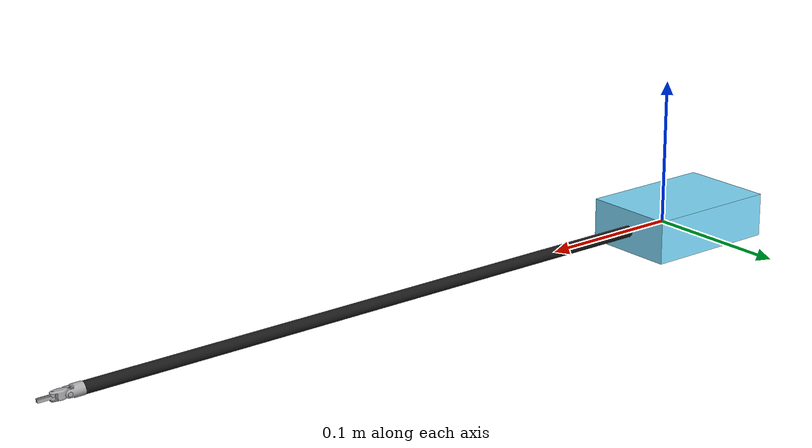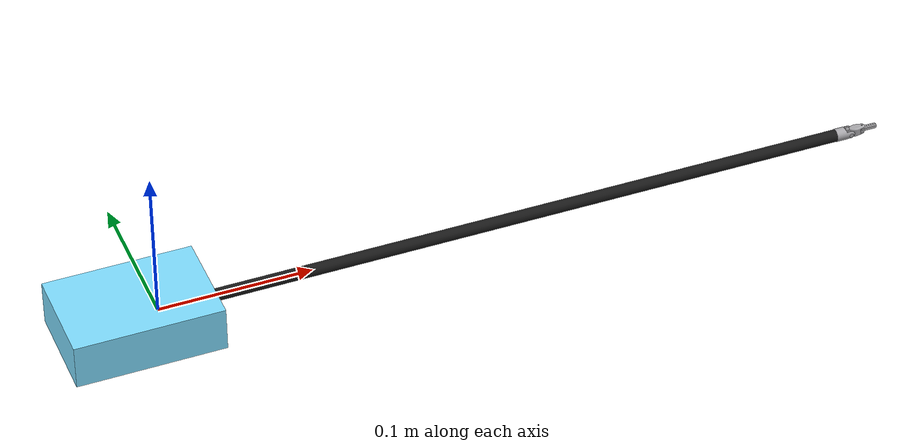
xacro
<?xml version="1.0"?>
<robot name="lnd_test" xmlns:xacro="http://ros.org/wiki/xacro">
  <link name="world" />

  <xacro:include filename="lnd.urdf.xacro" />
  <xacro:lnd420006 prefix="lnd_" />

  <joint name="lnd_world" type="fixed">
    <parent link="world"/>
    <child link="lnd_base"/>
    <origin xyz="0 0 0"/>
  </joint>

</robot>

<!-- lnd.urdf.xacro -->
<!-- da Vinci Large Needle Driver (LND) model 420006 (S/Si) and 470006 (X/Xi) -->
<robot name="lnd" xmlns:xacro="http://ros.org/wiki/xacro">

  <material name="tip_metallic_gray">
    <color rgba="0.667 0.663 0.678 1.0" />
  </material>

  <xacro:macro name="lnd_tip" params="prefix">
    <link name="${prefix}roll">
      <visual>
        <origin xyz="0 0 -0.01" rpy="0 0 ${pi/2}" />
        <geometry>
          <mesh filename="package://ursurg_description/meshes/lnd_tip/roll.stl" />
        </geometry>
        <material name="tip_metallic_gray" />
      </visual>
    </link>
    <link name="${prefix}wrist">
      <visual>
        <origin xyz="0 0 0" rpy="0 0 ${pi/2}" />
        <geometry>
          <mesh filename="package://ursurg_description/meshes/lnd_tip/wrist.stl" />
        </geometry>
        <material name="tip_metallic_gray" />
      </visual>
    </link>
    <link name="${prefix}jaw0" />
    <link name="${prefix}jaw1">
      <visual>
        <origin xyz="0 0 0" rpy="0 ${pi/2} 0" />
        <geometry>
          <mesh filename="package://ursurg_description/meshes/lnd_tip/jaw.stl" />
        </geometry>
        <material name="tip_metallic_gray" />
      </visual>
    </link>
    <link name="${prefix}jaw2">
      <visual>
        <origin xyz="0 0 0" rpy="0 ${pi/2} 0" />
        <geometry>
          <mesh filename="package://ursurg_description/meshes/lnd_tip/jaw.stl" />
        </geometry>
        <material name="tip_metallic_gray" />
      </visual>
    </link>
    <link name="${prefix}tcp1" />
    <link name="${prefix}tcp2" />

    <joint name="${prefix}roll_joint" type="revolute">
      <parent link="${prefix}base" />
      <child link="${prefix}roll" />
      <origin xyz="0.467 0 0" rpy="${-pi} ${-pi/2} 0" />
      <axis xyz="0 0 1" />
      <limit lower="${radians(-260)}" upper="${radians(260)}" effort="5" velocity="${pi}" />
    </joint>
    <joint name="${prefix}wrist_joint" type="revolute">
      <parent link="${prefix}roll" />
      <child link="${prefix}wrist" />
      <origin xyz="0 0 0" rpy="${-pi/2} ${-pi/2} 0" />
      <axis xyz="0 0 1" />
      <limit lower="${radians(-75)}" upper="${radians(75)}" effort="5" velocity="${pi}" />
    </joint>
    <joint name="${prefix}jaw0_joint" type="fixed">
      <parent link="${prefix}wrist" />
      <child link="${prefix}jaw0" />
      <origin xyz="0.0091 0 0" rpy="${pi/2} 0 0" />
    </joint>
    <joint name="${prefix}jaw1_joint" type="revolute">
      <parent link="${prefix}jaw0" />
      <child link="${prefix}jaw1" />
      <origin xyz="0 0 0" rpy="0 0 0" />
      <axis xyz="0 0 1" />
      <limit lower="${radians(-10)}" upper="${radians(75)}" effort="5" velocity="${pi}" />
    </joint>
    <joint name="${prefix}jaw2_joint" type="revolute">
      <parent link="${prefix}jaw0" />
      <child link="${prefix}jaw2" />
      <origin xyz="0 0 0" rpy="${pi} 0 0" />
      <axis xyz="0 0 1" />
      <limit lower="${radians(-10)}" upper="${radians(75)}" effort="5" velocity="${pi}" />
    </joint>
    <joint name="${prefix}tcp1_joint" type="fixed">
      <parent link="${prefix}jaw1" />
      <child link="${prefix}tcp1" />
      <origin xyz="0.009 0 0" rpy="0 0 0" />
    </joint>
    <joint name="${prefix}tcp2_joint" type="fixed">
      <parent link="${prefix}jaw2" />
      <child link="${prefix}tcp2" />
      <origin xyz="0.009 0 0" rpy="0 0 0" />
    </joint>
  </xacro:macro>

  <xacro:macro name="lnd420006" params="prefix">
    <link name="${prefix}base">
      <visual>
        <origin xyz="-0.015 0 0" rpy="0 0 0" />
        <geometry>
          <box size="0.096 0.065 0.03" />
        </geometry>
        <material name="housing_light_blue">
          <color rgba="0.500 0.867 1.0 1.0" />
        </material>
      </visual>
      <visual>
        <origin xyz="0.2285 0 0" rpy="0 ${pi/2} 0" />
        <geometry>
          <cylinder radius="0.004" length="0.457" />
        </geometry>
        <material name="rod_dark_grey">
          <color rgba="0.1 0.1 0.1 1.0" />
        </material>
      </visual>
    </link>
    <xacro:lnd_tip prefix="${prefix}" />
  </xacro:macro>

  <xacro:macro name="lnd470006" params="prefix">
    <!-- TODO -->
    <link name="${prefix}base"></link>
    <xacro:lnd_tip prefix="${prefix}" />
  </xacro:macro>
</robot>
